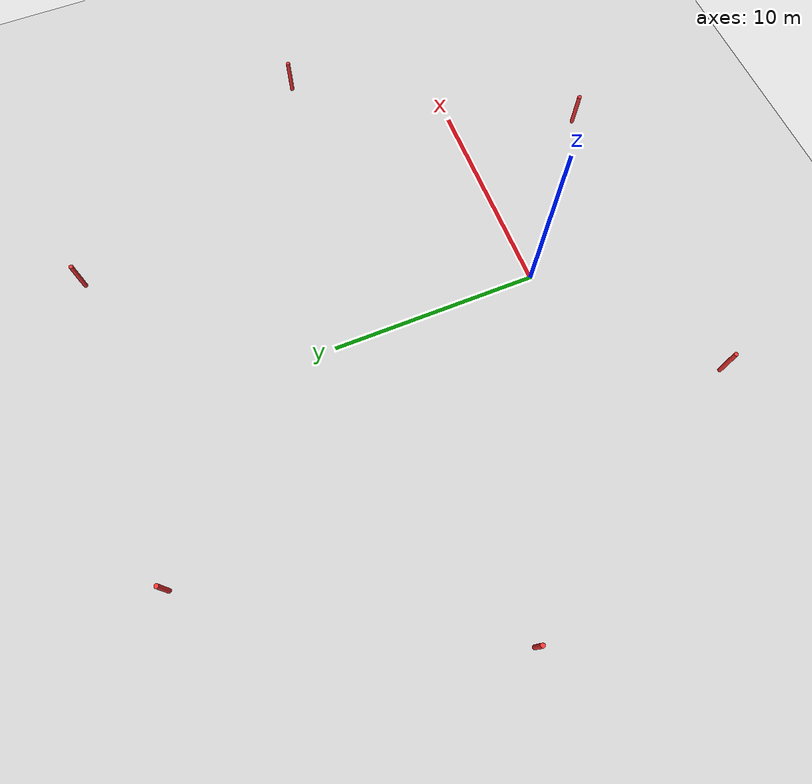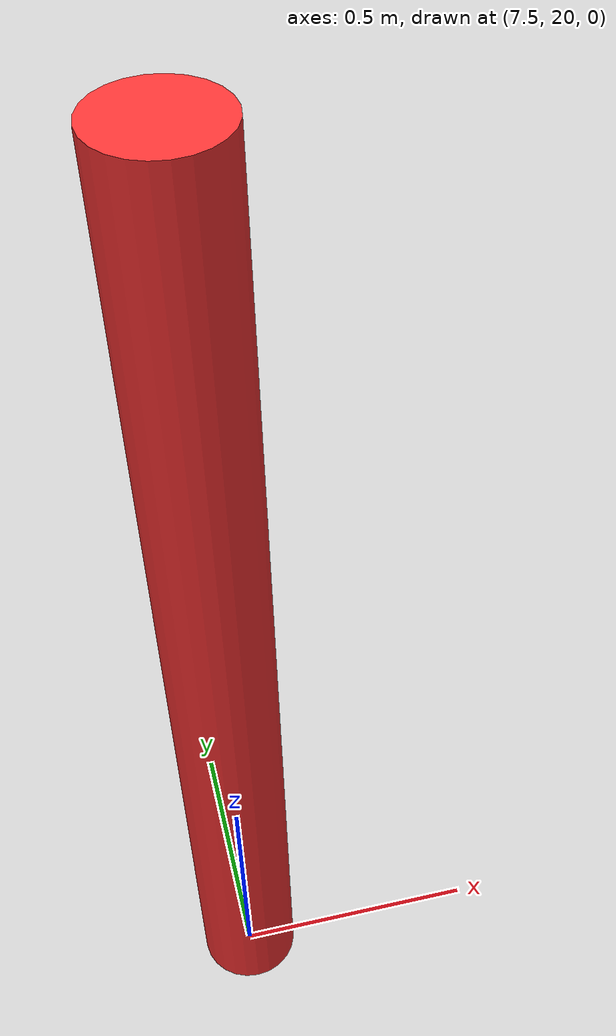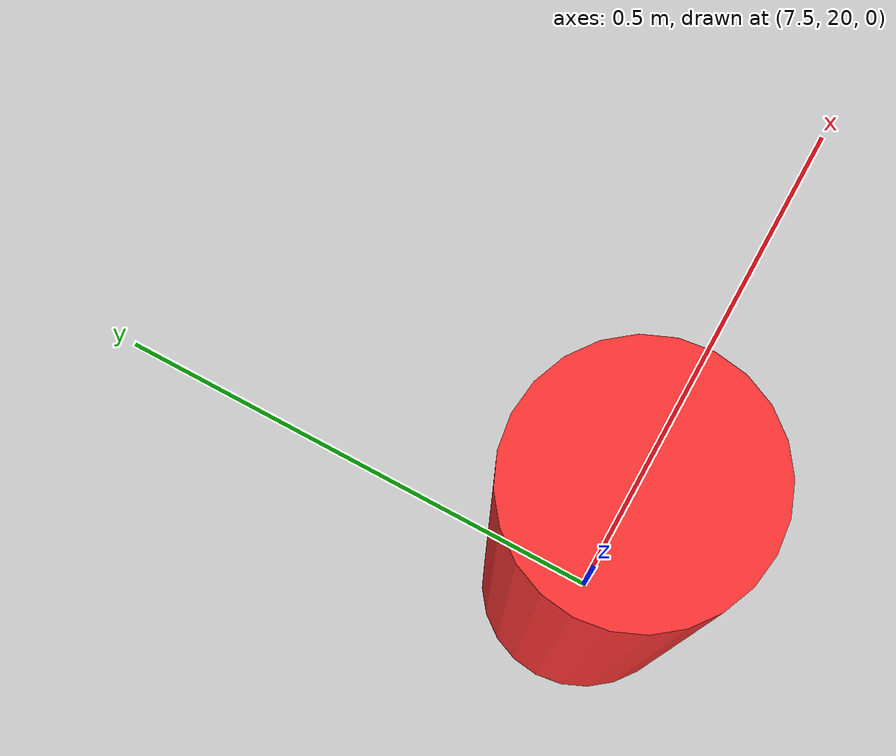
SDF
<?xml version="1.0"?>
<sdf version="1.9">
  <world name="beacons_world">

    <!-- Required Gz Fortress world systems -->
    <plugin filename="ignition-gazebo-physics-system"
            name="gz::sim::systems::Physics"/>
    <plugin filename="ignition-gazebo-sensors-system"
            name="gz::sim::systems::Sensors">
      <render_engine>ogre2</render_engine>
    </plugin>
    <plugin filename="ignition-gazebo-user-commands-system"
            name="gz::sim::systems::UserCommands"/>
    <plugin filename="ignition-gazebo-scene-broadcaster-system"
            name="gz::sim::systems::SceneBroadcaster"/>

    <gui fullscreen="0">
      <camera name="user_camera">
        <pose>0 7 80 0 1.5707963 0</pose>
        <view_controller>orbit</view_controller>
      </camera>
    </gui>

    <physics name="default_physics" type="ode">
      <max_step_size>0.001</max_step_size>
      <real_time_factor>1.0</real_time_factor>
      <real_time_update_rate>1000</real_time_update_rate>
    </physics>

    <!-- Lighting -->
    <light type="directional" name="sun">
      <cast_shadows>true</cast_shadows>
      <pose>0 0 10 0 0 0</pose>
      <diffuse>0.8 0.8 0.8 1</diffuse>
      <specular>0.2 0.2 0.2 1</specular>
      <direction>-0.5 0.1 -0.9</direction>
    </light>

    <!-- Ground plane -->
    <model name="ground_plane">
      <static>true</static>
      <link name="link">
        <collision name="collision">
          <geometry>
            <plane><normal>0 0 1</normal><size>500 500</size></plane>
          </geometry>
        </collision>
        <visual name="visual">
          <geometry>
            <plane><normal>0 0 1</normal><size>500 500</size></plane>
          </geometry>
          <material>
            <ambient>0.8 0.8 0.8 1</ambient>
            <diffuse>0.8 0.8 0.8 1</diffuse>
            <specular>0.8 0.8 0.8 1</specular>
          </material>
        </visual>
      </link>
    </model>

    <model name="beacon_0">
      <static>true</static>
      <pose>15 7 1.0 0 0 0</pose>
      <link name="link">
        <visual name="vis">
          <geometry><cylinder><radius>0.1</radius><length>2.0</length></cylinder></geometry>
          <material><ambient>1 0.2 0.2 1</ambient><diffuse>1 0.2 0.2 1</diffuse></material>
        </visual>
        <collision name="col">
          <geometry><cylinder><radius>0.1</radius><length>2.0</length></cylinder></geometry>
        </collision>
      </link>
    </model>

    <model name="beacon_1">
      <static>true</static>
      <pose>7.5 20.0 1.0 0 0 0</pose>
      <link name="link">
        <visual name="vis">
          <geometry><cylinder><radius>0.1</radius><length>2.0</length></cylinder></geometry>
          <material><ambient>1 0.2 0.2 1</ambient><diffuse>1 0.2 0.2 1</diffuse></material>
        </visual>
        <collision name="col">
          <geometry><cylinder><radius>0.1</radius><length>2.0</length></cylinder></geometry>
        </collision>
      </link>
    </model>

    <model name="beacon_2">
      <static>true</static>
      <pose>-7.5 20.0 1.0 0 0 0</pose>
      <link name="link">
        <visual name="vis">
          <geometry><cylinder><radius>0.1</radius><length>2.0</length></cylinder></geometry>
          <material><ambient>1 0.2 0.2 1</ambient><diffuse>1 0.2 0.2 1</diffuse></material>
        </visual>
        <collision name="col">
          <geometry><cylinder><radius>0.1</radius><length>2.0</length></cylinder></geometry>
        </collision>
      </link>
    </model>

    <model name="beacon_3">
      <static>true</static>
      <pose>-15 7 1.0 0 0 0</pose>
      <link name="link">
        <visual name="vis">
          <geometry><cylinder><radius>0.1</radius><length>2.0</length></cylinder></geometry>
          <material><ambient>1 0.2 0.2 1</ambient><diffuse>1 0.2 0.2 1</diffuse></material>
        </visual>
        <collision name="col">
          <geometry><cylinder><radius>0.1</radius><length>2.0</length></cylinder></geometry>
        </collision>
      </link>
    </model>

    <model name="beacon_4">
      <static>true</static>
      <pose>-7.5 -6.0 1.0 0 0 0</pose>
      <link name="link">
        <visual name="vis">
          <geometry><cylinder><radius>0.1</radius><length>2.0</length></cylinder></geometry>
          <material><ambient>1 0.2 0.2 1</ambient><diffuse>1 0.2 0.2 1</diffuse></material>
        </visual>
        <collision name="col">
          <geometry><cylinder><radius>0.1</radius><length>2.0</length></cylinder></geometry>
        </collision>
      </link>
    </model>

    <model name="beacon_5">
      <static>true</static>
      <pose>7.5 -6.0 1.0 0 0 0</pose>
      <link name="link">
        <visual name="vis">
          <geometry><cylinder><radius>0.1</radius><length>2.0</length></cylinder></geometry>
          <material><ambient>1 0.2 0.2 1</ambient><diffuse>1 0.2 0.2 1</diffuse></material>
        </visual>
        <collision name="col">
          <geometry><cylinder><radius>0.1</radius><length>2.0</length></cylinder></geometry>
        </collision>
      </link>
    </model>

  </world>
</sdf>
